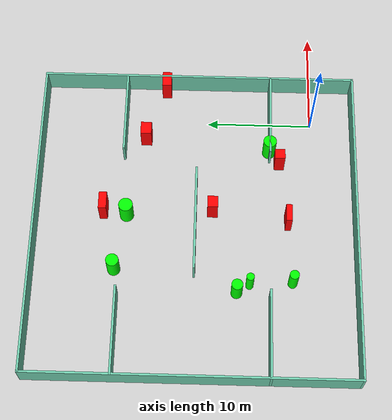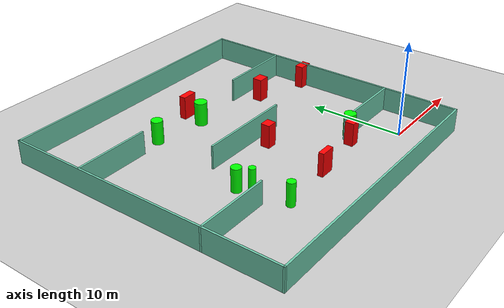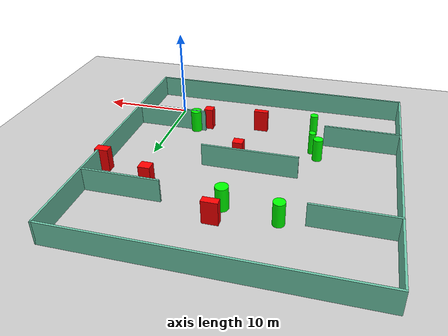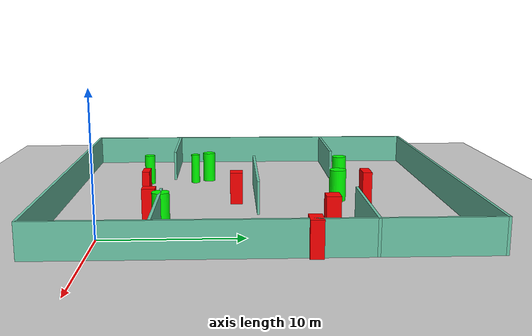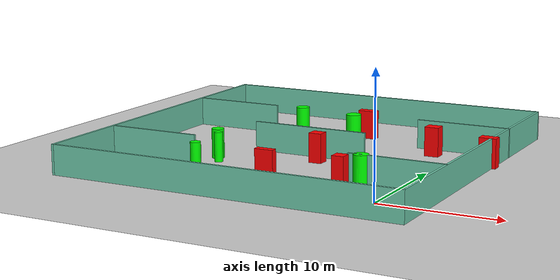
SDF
<sdf version="1.7">
 <world name="default">
  <light name="sun" type="directional">
   <pose>0 0 10 0 -0 0</pose>
   <diffuse>0.8 0.8 0.8 1</diffuse>
   <specular>0.2 0.2 0.2 1</specular>
   <attenuation>
    <range>1000</range>
    <constant>0.9</constant>
    <linear>0.01</linear>
    <quadratic>0.001</quadratic>
   </attenuation>
   <direction>-0.5 0.1 -0.9</direction>
   <spot><inner_angle>0</inner_angle><outer_angle>0</outer_angle><falloff>0</falloff></spot>
  </light>
  <model name="ground_plane">
   <static>1</static>
   <link name="link">
    <collision name="collision">
     <geometry><plane><normal>0 0 1</normal><size>100 100</size></plane></geometry>
     <surface>
      <contact><collide_bitmask>65535</collide_bitmask></contact>
      <friction><ode><mu>100</mu><mu2>50</mu2></ode></friction>
     </surface>
    </collision>
    <visual name="visual">
     <cast_shadows>0</cast_shadows>
     <geometry><plane><normal>0 0 1</normal><size>100 100</size></plane></geometry>
     <material>
      <script><uri>file://media/materials/scripts/gazebo.material</uri><name>Gazebo/Grey</name></script>
     </material>
    </visual>
   </link>
  </model>
  <gravity>0 0 -9.8</gravity>
  <magnetic_field>6e-06 2.3e-05 -4.2e-05</magnetic_field>
  <atmosphere type="adiabatic"/>
  <physics type="ode">
   <max_step_size>0.001</max_step_size>
   <real_time_factor>1</real_time_factor>
   <real_time_update_rate>1000</real_time_update_rate>
  </physics>
  <scene><ambient>0.4 0.4 0.4 1</ambient><background>0.7 0.7 0.7 1</background><shadows>1</shadows></scene>
  <spherical_coordinates>
   <surface_model>EARTH_WGS84</surface_model>
   <latitude_deg>0</latitude_deg>
   <longitude_deg>0</longitude_deg>
   <elevation>0</elevation>
   <heading_deg>0</heading_deg>
  </spherical_coordinates>
  <model name="my_base_walls">
   <link name="Wall_10">
    <collision name="Wall_10_Collision">
     <geometry><box><size>8.2 0.2 2.5</size></box></geometry>
     <pose>0 0 1.25 0 -0 0</pose>
    </collision>
    <visual name="Wall_10_Visual">
     <pose>0 0 1.25 0 -0 0</pose>
     <geometry><box><size>8.2 0.2 2.5</size></box></geometry>
     <material>
      <script><uri>file://media/materials/scripts/gazebo.material</uri><name>Gazebo/Grey</name></script>
      <ambient>0.435294 0.796078 0.67451 1</ambient>
     </material>
     <meta><layer>0</layer></meta>
    </visual>
    <pose>-11 -7 0 0 -0 0</pose>
   </link>
   <link name="Wall_12">
    <collision name="Wall_12_Collision">
     <geometry><box><size>8.2 0.2 2.5</size></box></geometry>
     <pose>0 0 1.25 0 -0 0</pose>
    </collision>
    <visual name="Wall_12_Visual">
     <pose>0 0 1.25 0 -0 0</pose>
     <geometry><box><size>8.2 0.2 2.5</size></box></geometry>
     <material>
      <script><uri>file://media/materials/scripts/gazebo.material</uri><name>Gazebo/Grey</name></script>
      <ambient>0.435294 0.796078 0.67451 1</ambient>
     </material>
     <meta><layer>0</layer></meta>
    </visual>
    <pose>-11 7 0 0 -0 0</pose>
   </link>
   <link name="Wall_14">
    <collision name="Wall_14_Collision">
     <geometry><box><size>8.2 0.2 2.5</size></box></geometry>
     <pose>0 0 1.25 0 -0 0</pose>
    </collision>
    <visual name="Wall_14_Visual">
     <pose>0 0 1.25 0 -0 0</pose>
     <geometry><box><size>8.2 0.2 2.5</size></box></geometry>
     <material>
      <script><uri>file://media/materials/scripts/gazebo.material</uri><name>Gazebo/Grey</name></script>
      <ambient>0.435294 0.796078 0.67451 1</ambient>
     </material>
     <meta><layer>0</layer></meta>
    </visual>
    <pose>11 7 0 0 -0 3.14159</pose>
   </link>
   <link name="Wall_16">
    <collision name="Wall_16_Collision">
     <geometry><box><size>10.2 0.2 2.5</size></box></geometry>
     <pose>0 0 1.25 0 -0 0</pose>
    </collision>
    <visual name="Wall_16_Visual">
     <pose>0 0 1.25 0 -0 0</pose>
     <geometry><box><size>10.2 0.2 2.5</size></box></geometry>
     <material>
      <script><uri>file://media/materials/scripts/gazebo.material</uri><name>Gazebo/Grey</name></script>
      <ambient>0.435294 0.796078 0.67451 1</ambient>
     </material>
     <meta><layer>0</layer></meta>
    </visual>
    <pose>0 0 0 0 -0 3.14159</pose>
   </link>
   <link name="Wall_2">
    <collision name="Wall_2_Collision">
     <geometry><box><size>30.2 0.2 2.5</size></box></geometry>
     <pose>0 0 1.25 0 -0 0</pose>
    </collision>
    <visual name="Wall_2_Visual">
     <pose>0 0 1.25 0 -0 0</pose>
     <geometry><box><size>30.2 0.2 2.5</size></box></geometry>
     <material>
      <script><uri>file://media/materials/scripts/gazebo.material</uri><name>Gazebo/Grey</name></script>
      <ambient>0.435294 0.796078 0.67451 1</ambient>
     </material>
     <meta><layer>0</layer></meta>
    </visual>
    <pose>0 -15 0 0 -0 3.14159</pose>
   </link>
   <link name="Wall_3">
    <collision name="Wall_3_Collision">
     <geometry><box><size>30.2 0.2 2.5</size></box></geometry>
     <pose>0 0 1.25 0 -0 0</pose>
    </collision>
    <visual name="Wall_3_Visual">
     <pose>0 0 1.25 0 -0 0</pose>
     <geometry><box><size>30.2 0.2 2.5</size></box></geometry>
     <material>
      <script><uri>file://media/materials/scripts/gazebo.material</uri><name>Gazebo/Grey</name></script>
      <ambient>0.435294 0.796078 0.67451 1</ambient>
     </material>
     <meta><layer>0</layer></meta>
    </visual>
    <pose>-15 0 0 0 -0 1.5708</pose>
   </link>
   <link name="Wall_4">
    <collision name="Wall_4_Collision">
     <geometry><box><size>30.2 0.2 2.5</size></box></geometry>
     <pose>0 0 1.25 0 -0 0</pose>
    </collision>
    <visual name="Wall_4_Visual">
     <pose>0 0 1.25 0 -0 0</pose>
     <geometry><box><size>30.2 0.2 2.5</size></box></geometry>
     <material>
      <script><uri>file://media/materials/scripts/gazebo.material</uri><name>Gazebo/Grey</name></script>
      <ambient>0.435294 0.796078 0.67451 1</ambient>
     </material>
     <meta><layer>0</layer></meta>
    </visual>
    <pose>0 15 0 0 -0 0</pose>
   </link>
   <link name="Wall_6">
    <collision name="Wall_6_Collision">
     <geometry><box><size>30.2 0.2 2.5</size></box></geometry>
     <pose>0 0 1.25 0 -0 0</pose>
    </collision>
    <visual name="Wall_6_Visual">
     <pose>0 0 1.25 0 -0 0</pose>
     <geometry><box><size>30.2 0.2 2.5</size></box></geometry>
     <material>
      <script><uri>file://media/materials/scripts/gazebo.material</uri><name>Gazebo/Grey</name></script>
      <ambient>0.435294 0.796078 0.67451 1</ambient>
     </material>
     <meta><layer>0</layer></meta>
    </visual>
    <pose>15 0 0 0 -0 1.5708</pose>
   </link>
   <link name="Wall_8">
    <collision name="Wall_8_Collision">
     <geometry><box><size>8.2 0.2 2.5</size></box></geometry>
     <pose>0 0 1.25 0 -0 0</pose>
    </collision>
    <visual name="Wall_8_Visual">
     <pose>0 0 1.25 0 -0 0</pose>
     <geometry><box><size>8.2 0.2 2.5</size></box></geometry>
     <material>
      <script><uri>file://media/materials/scripts/gazebo.material</uri><name>Gazebo/Grey</name></script>
      <ambient>0.435294 0.796078 0.67451 1</ambient>
     </material>
     <meta><layer>0</layer></meta>
    </visual>
    <pose>11 -7 0 0 -0 3.14159</pose>
   </link>
   <static>1</static>
   <pose>-11 11 0 0 -0 0</pose>
  </model>
  <model name="cylinder1">
   <static>1</static>
   <link name="link">
    <inertial>
     <mass>1</mass>
     <inertia><ixx>0.5</ixx><ixy>0</ixy><ixz>0</ixz><iyy>0.5</iyy><iyz>0</iyz><izz>1</izz></inertia>
    </inertial>
    <collision name="collision">
     <geometry><cylinder><radius>0.3597201897070977</radius><length>2.5</length></cylinder></geometry>
    </collision>
    <visual name="visual">
     <geometry><cylinder><radius>0.3597201897070977</radius><length>2.5</length></cylinder></geometry>
     <material>
      <ambient>0 1 0 1</ambient>
      <diffuse>0 1 0 1</diffuse>
      <specular>0.1 0.1 0.1 1</specular>
      <emissive>0 0 0 0</emissive>
     </material>
    </visual>
   </link>
   <pose>-16.795871762123298 5.859590817621726 1.25 0 0 0</pose>
  </model>
  <model name="cylinder2">
   <static>1</static>
   <link name="link">
    <inertial>
     <mass>1</mass>
     <inertia><ixx>0.5</ixx><ixy>0</ixy><ixz>0</ixz><iyy>0.5</iyy><iyz>0</iyz><izz>1</izz></inertia>
    </inertial>
    <collision name="collision">
     <geometry><cylinder><radius>0.4347619384543737</radius><length>2.5</length></cylinder></geometry>
    </collision>
    <visual name="visual">
     <geometry><cylinder><radius>0.4347619384543737</radius><length>2.5</length></cylinder></geometry>
     <material>
      <ambient>0 1 0 1</ambient>
      <diffuse>0 1 0 1</diffuse>
      <specular>0.1 0.1 0.1 1</specular>
      <emissive>0 0 0 0</emissive>
     </material>
    </visual>
   </link>
   <pose>-16.5085648728043 1.8904809448855762 1.25 0 0 0</pose>
  </model>
  <model name="cylinder3">
   <static>1</static>
   <link name="link">
    <inertial>
     <mass>1</mass>
     <inertia><ixx>0.5</ixx><ixy>0</ixy><ixz>0</ixz><iyy>0.5</iyy><iyz>0</iyz><izz>1</izz></inertia>
    </inertial>
    <collision name="collision">
     <geometry><cylinder><radius>0.6234657156930119</radius><length>2.5</length></cylinder></geometry>
    </collision>
    <visual name="visual">
     <geometry><cylinder><radius>0.6234657156930119</radius><length>2.5</length></cylinder></geometry>
     <material>
      <ambient>0 1 0 1</ambient>
      <diffuse>0 1 0 1</diffuse>
      <specular>0.1 0.1 0.1 1</specular>
      <emissive>0 0 0 0</emissive>
     </material>
    </visual>
   </link>
   <pose>-3.003493822476784 4.048279067732652 1.25 0 0 0</pose>
  </model>
  <model name="cylinder4">
   <static>1</static>
   <link name="link">
    <inertial>
     <mass>1</mass>
     <inertia><ixx>0.5</ixx><ixy>0</ixy><ixz>0</ixz><iyy>0.5</iyy><iyz>0</iyz><izz>1</izz></inertia>
    </inertial>
    <collision name="collision">
     <geometry><cylinder><radius>0.5925749502044022</radius><length>2.5</length></cylinder></geometry>
    </collision>
    <visual name="visual">
     <geometry><cylinder><radius>0.5925749502044022</radius><length>2.5</length></cylinder></geometry>
     <material>
      <ambient>0 1 0 1</ambient>
      <diffuse>0 1 0 1</diffuse>
      <specular>0.1 0.1 0.1 1</specular>
      <emissive>0 0 0 0</emissive>
     </material>
    </visual>
   </link>
   <pose>-15.523868918159838 18.423821672547156 1.25 0 0 0</pose>
  </model>
  <model name="cylinder5">
   <static>1</static>
   <link name="link">
    <inertial>
     <mass>1</mass>
     <inertia><ixx>0.5</ixx><ixy>0</ixy><ixz>0</ixz><iyy>0.5</iyy><iyz>0</iyz><izz>1</izz></inertia>
    </inertial>
    <collision name="collision">
     <geometry><cylinder><radius>0.6607032481557208</radius><length>2.5</length></cylinder></geometry>
    </collision>
    <visual name="visual">
     <geometry><cylinder><radius>0.6607032481557208</radius><length>2.5</length></cylinder></geometry>
     <material>
      <ambient>0 1 0 1</ambient>
      <diffuse>0 1 0 1</diffuse>
      <specular>0.1 0.1 0.1 1</specular>
      <emissive>0 0 0 0</emissive>
     </material>
    </visual>
   </link>
   <pose>-10.002806884248816 17.501800651423796 1.25 0 0 0</pose>
  </model>
  <model name="cylinder6">
   <static>1</static>
   <link name="link">
    <inertial>
     <mass>1</mass>
     <inertia><ixx>0.5</ixx><ixy>0</ixy><ixz>0</ixz><iyy>0.5</iyy><iyz>0</iyz><izz>1</izz></inertia>
    </inertial>
    <collision name="collision">
     <geometry><cylinder><radius>0.5187187090624726</radius><length>2.5</length></cylinder></geometry>
    </collision>
    <visual name="visual">
     <geometry><cylinder><radius>0.5187187090624726</radius><length>2.5</length></cylinder></geometry>
     <material>
      <ambient>0 1 0 1</ambient>
      <diffuse>0 1 0 1</diffuse>
      <specular>0.1 0.1 0.1 1</specular>
      <emissive>0 0 0 0</emissive>
     </material>
    </visual>
   </link>
   <pose>-17.563074171802924 7.044154942420493 1.25 0 0 0</pose>
  </model>
  <model name="box1">
   <static>1</static>
   <link name="link">
    <inertial>
     <mass>1</mass>
     <inertia><ixx>0.083</ixx><ixy>0</ixy><ixz>0</ixz><iyy>0.083</iyy><iyz>0</iyz><izz>0.083</izz></inertia>
    </inertial>
    <collision name="collision">
     <geometry><box><size>0.9858226901530895 0.9595254192047209 2.5</size></box></geometry>
    </collision>
    <visual name="visual">
     <geometry><box><size>0.9858226901530895 0.9595254192047209 2.5</size></box></geometry>
     <material>
      <ambient>1 0 0 1</ambient>
      <diffuse>1 0 0 1</diffuse>
      <specular>0.1 0.1 0.1 1</specular>
      <emissive>0 0 0 0</emissive>
     </material>
    </visual>
    <sensor name="my_contact" type="contact">
     <contact><collision>box_collision</collision><topic>__default_topic__</topic></contact>
    </sensor>
   </link>
   <pose>-4.31389983847369 3.095823133372109 1.25 0 0 0</pose>
  </model>
  <model name="box2">
   <static>1</static>
   <link name="link">
    <inertial>
     <mass>1</mass>
     <inertia><ixx>0.083</ixx><ixy>0</ixy><ixz>0</ixz><iyy>0.083</iyy><iyz>0</iyz><izz>0.083</izz></inertia>
    </inertial>
    <collision name="collision">
     <geometry><box><size>1.223485525560685 1.0324098501400816 2.5</size></box></geometry>
    </collision>
    <visual name="visual">
     <geometry><box><size>1.223485525560685 1.0324098501400816 2.5</size></box></geometry>
     <material>
      <ambient>1 0 0 1</ambient>
      <diffuse>1 0 0 1</diffuse>
      <specular>0.1 0.1 0.1 1</specular>
      <emissive>0 0 0 0</emissive>
     </material>
    </visual>
    <sensor name="my_contact" type="contact">
     <contact><collision>box_collision</collision><topic>__default_topic__</topic></contact>
    </sensor>
   </link>
   <pose>-1.8411420354004342 15.962011943881265 1.25 0 0 0</pose>
  </model>
  <model name="box3">
   <static>1</static>
   <link name="link">
    <inertial>
     <mass>1</mass>
     <inertia><ixx>0.083</ixx><ixy>0</ixy><ixz>0</ixz><iyy>0.083</iyy><iyz>0</iyz><izz>0.083</izz></inertia>
    </inertial>
    <collision name="collision">
     <geometry><box><size>1.5927798821002048 0.5741587206316812 2.5</size></box></geometry>
    </collision>
    <visual name="visual">
     <geometry><box><size>1.5927798821002048 0.5741587206316812 2.5</size></box></geometry>
     <material>
      <ambient>1 0 0 1</ambient>
      <diffuse>1 0 0 1</diffuse>
      <specular>0.1 0.1 0.1 1</specular>
      <emissive>0 0 0 0</emissive>
     </material>
    </visual>
    <sensor name="my_contact" type="contact">
     <contact><collision>box_collision</collision><topic>__default_topic__</topic></contact>
    </sensor>
   </link>
   <pose>-10.379565976834545 2.2869298903889996 1.25 0 0 0</pose>
  </model>
  <model name="box4">
   <static>1</static>
   <link name="link">
    <inertial>
     <mass>1</mass>
     <inertia><ixx>0.083</ixx><ixy>0</ixy><ixz>0</ixz><iyy>0.083</iyy><iyz>0</iyz><izz>0.083</izz></inertia>
    </inertial>
    <collision name="collision">
     <geometry><box><size>1.0893502478759953 0.9723014465590223 2.5</size></box></geometry>
    </collision>
    <visual name="visual">
     <geometry><box><size>1.0893502478759953 0.9723014465590223 2.5</size></box></geometry>
     <material>
      <ambient>1 0 0 1</ambient>
      <diffuse>1 0 0 1</diffuse>
      <specular>0.1 0.1 0.1 1</specular>
      <emissive>0 0 0 0</emissive>
     </material>
    </visual>
    <sensor name="my_contact" type="contact">
     <contact><collision>box_collision</collision><topic>__default_topic__</topic></contact>
    </sensor>
   </link>
   <pose>-9.453979037040952 9.406455943424806 1.25 0 0 0</pose>
  </model>
  <model name="box5">
   <static>1</static>
   <link name="link">
    <inertial>
     <mass>1</mass>
     <inertia><ixx>0.083</ixx><ixy>0</ixy><ixz>0</ixz><iyy>0.083</iyy><iyz>0</iyz><izz>0.083</izz></inertia>
    </inertial>
    <collision name="collision">
     <geometry><box><size>1.62651552794782 0.7346196373789948 2.5</size></box></geometry>
    </collision>
    <visual name="visual">
     <geometry><box><size>1.62651552794782 0.7346196373789948 2.5</size></box></geometry>
     <material>
      <ambient>1 0 0 1</ambient>
      <diffuse>1 0 0 1</diffuse>
      <specular>0.1 0.1 0.1 1</specular>
      <emissive>0 0 0 0</emissive>
     </material>
    </visual>
    <sensor name="my_contact" type="contact">
     <contact><collision>box_collision</collision><topic>__default_topic__</topic></contact>
    </sensor>
   </link>
   <pose>-9.579928802904163 19.673543616341505 1.25 0 0 0</pose>
  </model>
  <model name="box6">
   <static>1</static>
   <link name="link">
    <inertial>
     <mass>1</mass>
     <inertia><ixx>0.083</ixx><ixy>0</ixy><ixz>0</ixz><iyy>0.083</iyy><iyz>0</iyz><izz>0.083</izz></inertia>
    </inertial>
    <collision name="collision">
     <geometry><box><size>1.458641963942186 0.8920520732218917 2.5</size></box></geometry>
    </collision>
    <visual name="visual">
     <geometry><box><size>1.458641963942186 0.8920520732218917 2.5</size></box></geometry>
     <material>
      <ambient>1 0 0 1</ambient>
      <diffuse>1 0 0 1</diffuse>
      <specular>0.1 0.1 0.1 1</specular>
      <emissive>0 0 0 0</emissive>
     </material>
    </visual>
    <sensor name="my_contact" type="contact">
     <contact><collision>box_collision</collision><topic>__default_topic__</topic></contact>
    </sensor>
   </link>
   <pose>3.68561199534512 14.154962375320697 1.25 0 0 0</pose>
  </model>
 </world>
</sdf>
